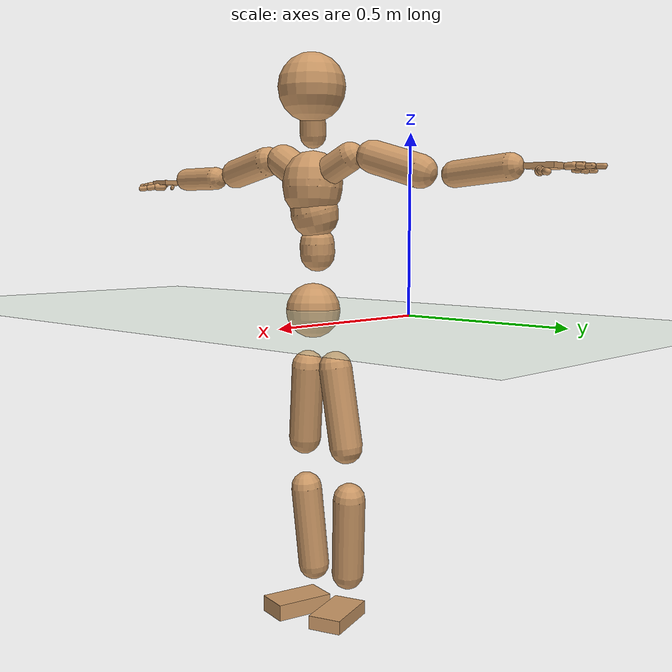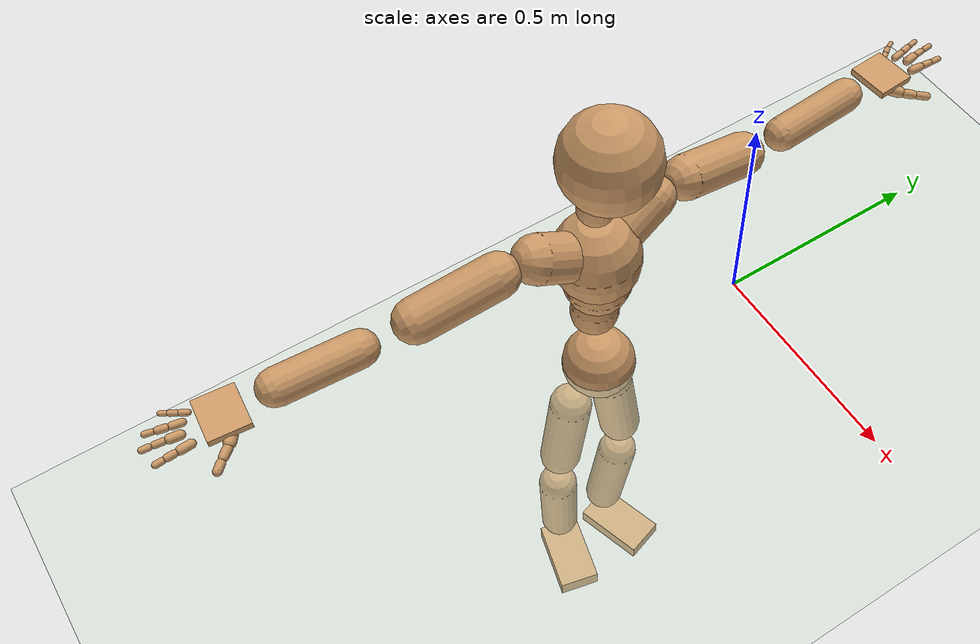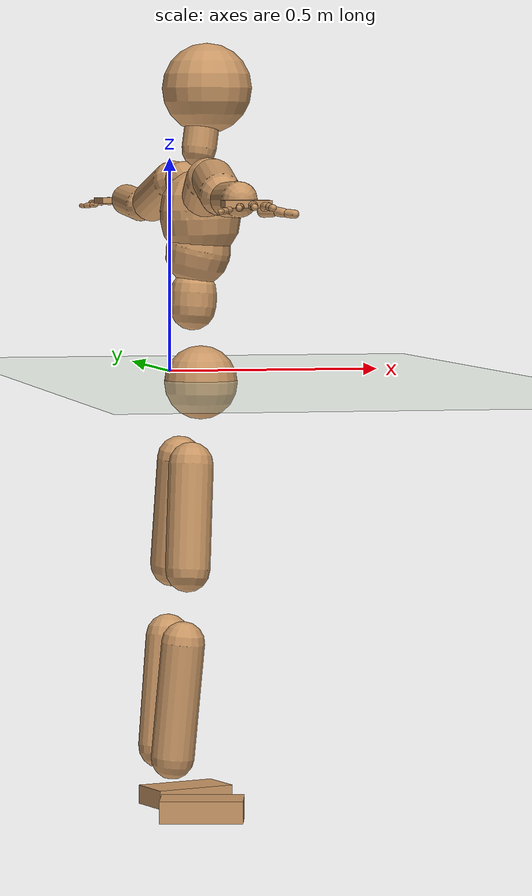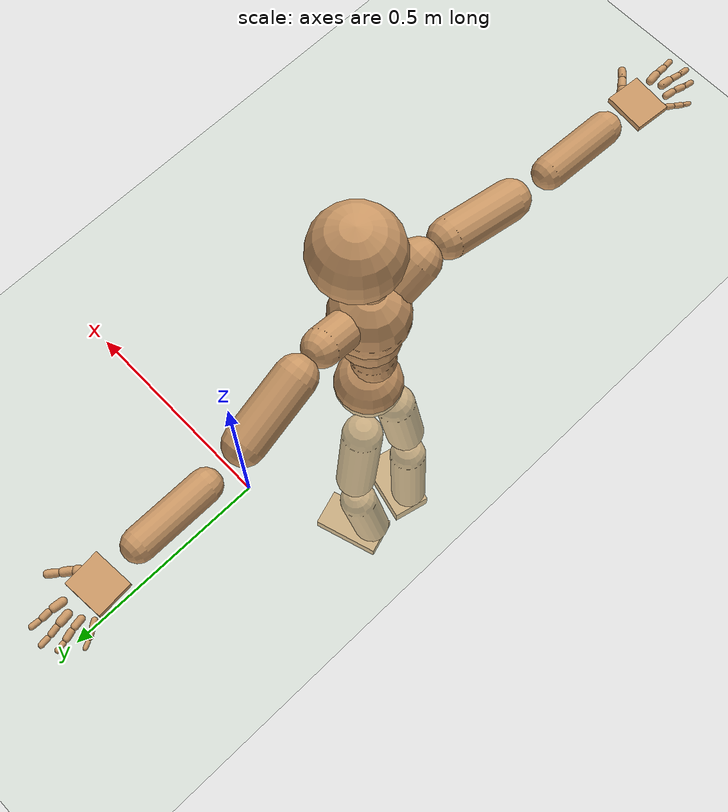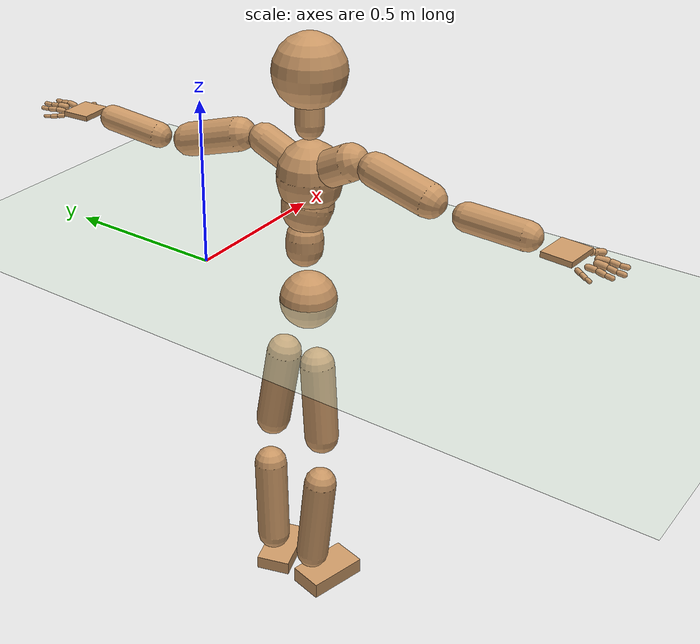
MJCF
<mujoco model="humanoid">
  <compiler coordinate="local" angle="radian"/>
  <default>
    <joint damping="0.0" armature="0.01" stiffness="0.0" limited="true"/>
    <geom conaffinity="1" condim="3" contype="7" margin="0.001" rgba="0.8 0.6 .4 1"/>
  </default>
  <asset>
    <texture type="skybox" builtin="gradient" rgb1=".4 .5 .6" rgb2="0 0 0" width="100" height="100"/>
    <texture builtin="flat" height="1278" mark="cross" markrgb="1 1 1" name="texgeom" random="0.01" rgb1="0.8 0.6 0.4" rgb2="0.8 0.6 0.4" type="cube" width="127"/>
    <texture builtin="checker" height="100" name="texplane" rgb1="0 0 0" rgb2="0.8 0.8 0.8" type="2d" width="100"/>
    <material name="MatPlane" reflectance="0.5" shininess="1" specular="1" texrepeat="60 60" texture="texplane"/>
    <material name="geom" texture="texgeom" texuniform="true"/>
  </asset>
  <worldbody>
    <light cutoff="100" diffuse="1 1 1" dir="-0 0 -1.3" directional="true" exponent="1" pos="0 0 1.3" specular=".1 .1 .1"/>
    <geom conaffinity="1" condim="3" name="floor" pos="0 0 0" rgba="0.8 0.9 0.8 1" size="100 100 .2" type="plane" material="MatPlane"/>
    <body name="Pelvis" pos="0.0003 -0.3747 -0.0071">
      <freejoint name="Pelvis"/>
      <geom type="sphere" contype="1" conaffinity="1" density="500" size="0.0833" pos="0.0000 0.0000 0.0000" name="Pelvis"/>
      <body name="L_Hip" pos="-0.0344 0.0461 -0.0937">
        <joint name="L_Hip_x" type="hinge" pos="0 0 0" axis="1 0 0" stiffness="800" damping="80" armature="0.02" range="-180.0000 180.0000"/>
        <joint name="L_Hip_y" type="hinge" pos="0 0 0" axis="0 1 0" stiffness="800" damping="80" armature="0.02" range="-180.0000 180.0000"/>
        <joint name="L_Hip_z" type="hinge" pos="0 0 0" axis="0 0 1" stiffness="800" damping="80" armature="0.02" range="-180.0000 180.0000"/>
        <geom type="capsule" contype="1" conaffinity="1" density="500" fromto="-0.0032 0.0121 -0.0815 -0.0130 0.0482 -0.3260" size="0.0511" name="L_Hip"/>
        <body name="L_Knee" pos="-0.0162 0.0603 -0.4074">
          <joint name="L_Knee_x" type="hinge" pos="0 0 0" axis="1 0 0" stiffness="800" damping="80" armature="0.02" range="-180.0000 180.0000"/>
          <joint name="L_Knee_y" type="hinge" pos="0 0 0" axis="0 1 0" stiffness="800" damping="80" armature="0.02" range="-180.0000 180.0000"/>
          <joint name="L_Knee_z" type="hinge" pos="0 0 0" axis="0 0 1" stiffness="800" damping="80" armature="0.02" range="-180.0000 180.0000"/>
          <geom type="capsule" contype="1" conaffinity="1" density="500" fromto="-0.0076 -0.0087 -0.0835 -0.0304 -0.0350 -0.3340" size="0.0499" name="L_Knee"/>
          <body name="L_Ankle" pos="-0.038 -0.0437 -0.4175">
            <joint name="L_Ankle_x" type="hinge" pos="0 0 0" axis="1 0 0" stiffness="800" damping="80" armature="0.02" range="-180.0000 180.0000"/>
            <joint name="L_Ankle_y" type="hinge" pos="0 0 0" axis="0 1 0" stiffness="800" damping="80" armature="0.02" range="-180.0000 180.0000"/>
            <joint name="L_Ankle_z" type="hinge" pos="0 0 0" axis="0 0 1" stiffness="800" damping="80" armature="0.02" range="-180.0000 180.0000"/>
            <geom type="box" contype="1" conaffinity="1" density="500" pos="0.0691 0.0218 -0.0312" size="0.0936 0.0518 0.0212" quat="0.9884 0.0000 0.0000 0.1521" name="L_Ankle"/>
            <body name="L_Toe" pos="0.1381 0.0435 -0.0624">
              <joint name="L_Toe_x" type="hinge" pos="0 0 0" axis="1 0 0" stiffness="500" damping="50" armature="0.02" range="-180.0000 180.0000"/>
              <joint name="L_Toe_y" type="hinge" pos="0 0 0" axis="0 1 0" stiffness="500" damping="50" armature="0.02" range="-180.0000 180.0000"/>
              <joint name="L_Toe_z" type="hinge" pos="0 0 0" axis="0 0 1" stiffness="500" damping="50" armature="0.02" range="-180.0000 180.0000"/>
              <geom type="box" contype="1" conaffinity="1" density="500" pos="0.0000 0.0000 0.0309" size="0.001 0.0025 0.001" quat="0.9877 0.0000 0.0000 0.1565" name="L_Toe"/>
            </body>
          </body>
        </body>
      </body>
      <body name="R_Hip" pos="-0.0293 -0.0473 -0.103">
        <joint name="R_Hip_x" type="hinge" pos="0 0 0" axis="1 0 0" stiffness="800" damping="80" armature="0.02" range="-180.0000 180.0000"/>
        <joint name="R_Hip_y" type="hinge" pos="0 0 0" axis="0 1 0" stiffness="800" damping="80" armature="0.02" range="-180.0000 180.0000"/>
        <joint name="R_Hip_z" type="hinge" pos="0 0 0" axis="0 0 1" stiffness="800" damping="80" armature="0.02" range="-180.0000 180.0000"/>
        <geom type="capsule" contype="1" conaffinity="1" density="500" fromto="-0.0044 -0.0091 -0.0782 -0.0175 -0.0365 -0.3127" size="0.0505" name="R_Hip"/>
        <body name="R_Knee" pos="-0.0219 -0.0456 -0.3908">
          <joint name="R_Knee_x" type="hinge" pos="0 0 0" axis="1 0 0" stiffness="800" damping="80" armature="0.02" range="-180.0000 180.0000"/>
          <joint name="R_Knee_y" type="hinge" pos="0 0 0" axis="0 1 0" stiffness="800" damping="80" armature="0.02" range="-180.0000 180.0000"/>
          <joint name="R_Knee_z" type="hinge" pos="0 0 0" axis="0 0 1" stiffness="800" damping="80" armature="0.02" range="-180.0000 180.0000"/>
          <geom type="capsule" contype="1" conaffinity="1" density="500" fromto="-0.0073 0.0038 -0.0864 -0.0292 0.0153 -0.3456" size="0.0491" name="R_Knee"/>
          <body name="R_Ankle" pos="-0.0365 0.0191 -0.4319">
            <joint name="R_Ankle_x" type="hinge" pos="0 0 0" axis="1 0 0" stiffness="800" damping="80" armature="0.02" range="-180.0000 180.0000"/>
            <joint name="R_Ankle_y" type="hinge" pos="0 0 0" axis="0 1 0" stiffness="800" damping="80" armature="0.02" range="-180.0000 180.0000"/>
            <joint name="R_Ankle_z" type="hinge" pos="0 0 0" axis="0 0 1" stiffness="800" damping="80" armature="0.02" range="-180.0000 180.0000"/>
            <geom type="box" contype="1" conaffinity="1" density="500" pos="0.0721 -0.0175 -0.0309" size="0.0936 0.0526 0.0253" quat="0.9929 0.0000 0.0000 -0.1190" name="R_Ankle"/>
            <body name="R_Toe" pos="0.1441 -0.0351 -0.0618">
              <joint name="R_Toe_x" type="hinge" pos="0 0 0" axis="1 0 0" stiffness="500" damping="50" armature="0.02" range="-180.0000 180.0000"/>
              <joint name="R_Toe_y" type="hinge" pos="0 0 0" axis="0 1 0" stiffness="500" damping="50" armature="0.02" range="-180.0000 180.0000"/>
              <joint name="R_Toe_z" type="hinge" pos="0 0 0" axis="0 0 1" stiffness="500" damping="50" armature="0.02" range="-180.0000 180.0000"/>
              <geom type="box" contype="1" conaffinity="1" density="500" pos="0.0000 0.0000 0.0264" size="0.001 0.0025 0.001" quat="0.9938 0.0000 0.0000 -0.1110" name="R_Toe"/>
            </body>
          </body>
        </body>
      </body>
      <body name="Torso" pos="-0.0223 -0.0007 0.107">
        <joint name="Torso_x" type="hinge" pos="0 0 0" axis="1 0 0" stiffness="1000" damping="100" armature="0.02" range="-180.0000 180.0000"/>
        <joint name="Torso_y" type="hinge" pos="0 0 0" axis="0 1 0" stiffness="1000" damping="100" armature="0.02" range="-180.0000 180.0000"/>
        <joint name="Torso_z" type="hinge" pos="0 0 0" axis="0 0 1" stiffness="1000" damping="100" armature="0.02" range="-180.0000 180.0000"/>
        <geom type="capsule" contype="1" conaffinity="1" density="500" fromto="0.0062 0.0027 0.0953 0.0041 0.0018 0.0636" size="0.0528" name="Torso"/>
        <body name="Spine" pos="0.0103 0.0044 0.1589">
          <joint name="Spine_x" type="hinge" pos="0 0 0" axis="1 0 0" stiffness="1000" damping="100" armature="0.02" range="-180.0000 180.0000"/>
          <joint name="Spine_y" type="hinge" pos="0 0 0" axis="0 1 0" stiffness="1000" damping="100" armature="0.02" range="-180.0000 180.0000"/>
          <joint name="Spine_z" type="hinge" pos="0 0 0" axis="0 0 1" stiffness="1000" damping="100" armature="0.02" range="-180.0000 180.0000"/>
          <geom type="capsule" contype="1" conaffinity="1" density="500" fromto="0.0077 -0.0038 0.0359 0.0051 -0.0025 0.0239" size="0.073" name="Spine"/>
          <body name="Chest" pos="0.0128 -0.0063 0.0598">
            <joint name="Chest_x" type="hinge" pos="0 0 0" axis="1 0 0" stiffness="1000" damping="100" armature="0.02" range="-180.0000 180.0000"/>
            <joint name="Chest_y" type="hinge" pos="0 0 0" axis="0 1 0" stiffness="1000" damping="100" armature="0.02" range="-180.0000 180.0000"/>
            <joint name="Chest_z" type="hinge" pos="0 0 0" axis="0 0 1" stiffness="1000" damping="100" armature="0.02" range="-180.0000 180.0000"/>
            <geom type="capsule" contype="1" conaffinity="1" density="500" fromto="-0.0026 -0.0004 0.0637 -0.0018 -0.0003 0.0424" size="0.091" name="Chest"/>
            <body name="Neck" pos="-0.0107 -0.0051 0.1649">
              <joint name="Neck_x" type="hinge" pos="0 0 0" axis="1 0 0" stiffness="500" damping="50" armature="0.02" range="-180.0000 180.0000"/>
              <joint name="Neck_y" type="hinge" pos="0 0 0" axis="0 1 0" stiffness="500" damping="50" armature="0.02" range="-180.0000 180.0000"/>
              <joint name="Neck_z" type="hinge" pos="0 0 0" axis="0 0 1" stiffness="500" damping="50" armature="0.02" range="-180.0000 180.0000"/>
              <geom type="capsule" contype="1" conaffinity="1" density="500" fromto="0.0053 0.0040 0.0342 0.0213 0.0161 0.1366" size="0.0393" name="Neck"/>
              <body name="Head" pos="0.0267 0.0201 0.1708">
                <joint name="Head_x" type="hinge" pos="0 0 0" axis="1 0 0" stiffness="500" damping="50" armature="0.02" range="-180.0000 180.0000"/>
                <joint name="Head_y" type="hinge" pos="0 0 0" axis="0 1 0" stiffness="500" damping="50" armature="0.02" range="-180.0000 180.0000"/>
                <joint name="Head_z" type="hinge" pos="0 0 0" axis="0 0 1" stiffness="500" damping="50" armature="0.02" range="-180.0000 180.0000"/>
                <geom type="sphere" contype="1" conaffinity="1" density="500" size="0.1016" pos="0.0000 0.0000 0.0000" name="Head"/>
              </body>
            </body>
            <body name="L_Thorax" pos="0.0009 0.0399 0.0766">
              <joint name="L_Thorax_x" type="hinge" pos="0 0 0" axis="1 0 0" stiffness="500" damping="50" armature="0.02" range="-180.0000 180.0000"/>
              <joint name="L_Thorax_y" type="hinge" pos="0 0 0" axis="0 1 0" stiffness="500" damping="50" armature="0.02" range="-180.0000 180.0000"/>
              <joint name="L_Thorax_z" type="hinge" pos="0 0 0" axis="0 0 1" stiffness="500" damping="50" armature="0.02" range="-180.0000 180.0000"/>
              <geom type="capsule" contype="1" conaffinity="1" density="500" fromto="-0.0033 0.0257 0.0132 -0.0133 0.1027 0.0529" size="0.0435" name="L_Thorax"/>
              <body name="L_Shoulder" pos="-0.0166 0.1284 0.0662">
                <joint name="L_Shoulder_x" type="hinge" pos="0 0 0" axis="1 0 0" stiffness="500" damping="50" armature="0.02" range="-180.0000 180.0000"/>
                <joint name="L_Shoulder_y" type="hinge" pos="0 0 0" axis="0 1 0" stiffness="500" damping="50" armature="0.02" range="-180.0000 180.0000"/>
                <joint name="L_Shoulder_z" type="hinge" pos="0 0 0" axis="0 0 1" stiffness="500" damping="50" armature="0.02" range="-180.0000 180.0000"/>
                <geom type="capsule" contype="1" conaffinity="1" density="500" fromto="-0.0062 0.0534 -0.0156 -0.0249 0.2137 -0.0626" size="0.0475" name="L_Shoulder"/>
                <body name="L_Elbow" pos="-0.0311 0.2671 -0.0782">
                  <joint name="L_Elbow_x" type="hinge" pos="0 0 0" axis="1 0 0" stiffness="500" damping="50" armature="0.02" range="-720.0000 720.0000"/>
                  <joint name="L_Elbow_y" type="hinge" pos="0 0 0" axis="0 1 0" stiffness="500" damping="50" armature="0.02" range="-720.0000 720.0000"/>
                  <joint name="L_Elbow_z" type="hinge" pos="0 0 0" axis="0 0 1" stiffness="500" damping="50" armature="0.02" range="-720.0000 720.0000"/>
                  <geom type="capsule" contype="1" conaffinity="1" density="500" fromto="-0.0014 0.0576 0.0045 -0.0055 0.2306 0.0179" size="0.0367" name="L_Elbow"/>
                  <body name="L_Wrist" pos="-0.0069 0.2882 0.0224">
                    <joint name="L_Wrist_x" type="hinge" pos="0 0 0" axis="1 0 0" stiffness="300" damping="30" armature="0.02" range="-180.0000 180.0000"/>
                    <joint name="L_Wrist_y" type="hinge" pos="0 0 0" axis="0 1 0" stiffness="300" damping="30" armature="0.02" range="-180.0000 180.0000"/>
                    <joint name="L_Wrist_z" type="hinge" pos="0 0 0" axis="0 0 1" stiffness="300" damping="30" armature="0.02" range="-180.0000 180.0000"/>
                    <geom type="box" contype="1" conaffinity="1" density="500" pos="-0.0036 0.0476 -0.0071" size="0.0419 0.0472 0.0074" quat="0.7334 0.0000 0.0000 -0.6798" name="L_Wrist"/>
                    <body name="L_Index1" pos="0.0188 0.1107 -0.0116">
                      <joint name="L_Index1_x" type="hinge" pos="0 0 0" axis="1 0 0" stiffness="100" damping="10" armature="0.02" range="-180.0000 180.0000"/>
                      <joint name="L_Index1_y" type="hinge" pos="0 0 0" axis="0 1 0" stiffness="100" damping="10" armature="0.02" range="-180.0000 180.0000"/>
                      <joint name="L_Index1_z" type="hinge" pos="0 0 0" axis="0 0 1" stiffness="100" damping="10" armature="0.02" range="-180.0000 180.0000"/>
                      <geom type="capsule" contype="1" conaffinity="1" density="500" fromto="0.0006 0.0068 0.0003 0.0026 0.0273 0.0012" size="0.0092" name="L_Index1"/>
                      <body name="L_Index2" pos="0.0032 0.0342 0.0015">
                        <joint name="L_Index2_x" type="hinge" pos="0 0 0" axis="1 0 0" stiffness="100" damping="10" armature="0.02" range="-180.0000 180.0000"/>
                        <joint name="L_Index2_y" type="hinge" pos="0 0 0" axis="0 1 0" stiffness="100" damping="10" armature="0.02" range="-180.0000 180.0000"/>
                        <joint name="L_Index2_z" type="hinge" pos="0 0 0" axis="0 0 1" stiffness="100" damping="10" armature="0.02" range="-180.0000 180.0000"/>
                        <geom type="capsule" contype="1" conaffinity="1" density="500" fromto="-0.0000 0.0048 -0.0005 -0.0002 0.0193 -0.0020" size="0.0076" name="L_Index2"/>
                        <body name="L_Index3" pos="-0.0002 0.0242 -0.0025">
                          <joint name="L_Index3_x" type="hinge" pos="0 0 0" axis="1 0 0" stiffness="100" damping="10" armature="0.02" range="-180.0000 180.0000"/>
                          <joint name="L_Index3_y" type="hinge" pos="0 0 0" axis="0 1 0" stiffness="100" damping="10" armature="0.02" range="-180.0000 180.0000"/>
                          <joint name="L_Index3_z" type="hinge" pos="0 0 0" axis="0 0 1" stiffness="100" damping="10" armature="0.02" range="-180.0000 180.0000"/>
                          <geom type="capsule" contype="1" conaffinity="1" density="500" fromto="0.0004 0.0052 -0.0001 0.0014 0.0209 -0.0004" size="0.0065" name="L_Index3"/>
                        </body>
                      </body>
                    </body>
                    <body name="L_Middle1" pos="-0.0056 0.1194 -0.0091">
                      <joint name="L_Middle1_x" type="hinge" pos="0 0 0" axis="1 0 0" stiffness="100" damping="10" armature="0.02" range="-180.0000 180.0000"/>
                      <joint name="L_Middle1_y" type="hinge" pos="0 0 0" axis="0 1 0" stiffness="100" damping="10" armature="0.02" range="-180.0000 180.0000"/>
                      <joint name="L_Middle1_z" type="hinge" pos="0 0 0" axis="0 0 1" stiffness="100" damping="10" armature="0.02" range="-180.0000 180.0000"/>
                      <geom type="capsule" contype="1" conaffinity="1" density="500" fromto="-0.0009 0.0065 0.0000 -0.0037 0.0261 0.0001" size="0.0094" name="L_Middle1"/>
                      <body name="L_Middle2" pos="-0.0047 0.0326 0.0001">
                        <joint name="L_Middle2_x" type="hinge" pos="0 0 0" axis="1 0 0" stiffness="100" damping="10" armature="0.02" range="-180.0000 180.0000"/>
                        <joint name="L_Middle2_y" type="hinge" pos="0 0 0" axis="0 1 0" stiffness="100" damping="10" armature="0.02" range="-180.0000 180.0000"/>
                        <joint name="L_Middle2_z" type="hinge" pos="0 0 0" axis="0 0 1" stiffness="100" damping="10" armature="0.02" range="-180.0000 180.0000"/>
                        <geom type="capsule" contype="1" conaffinity="1" density="500" fromto="-0.0009 0.0050 -0.0005 -0.0036 0.0201 -0.0019" size="0.0071" name="L_Middle2"/>
                        <body name="L_Middle3" pos="-0.0045 0.0251 -0.0024">
                          <joint name="L_Middle3_x" type="hinge" pos="0 0 0" axis="1 0 0" stiffness="100" damping="10" armature="0.02" range="-180.0000 180.0000"/>
                          <joint name="L_Middle3_y" type="hinge" pos="0 0 0" axis="0 1 0" stiffness="100" damping="10" armature="0.02" range="-180.0000 180.0000"/>
                          <joint name="L_Middle3_z" type="hinge" pos="0 0 0" axis="0 0 1" stiffness="100" damping="10" armature="0.02" range="-180.0000 180.0000"/>
                          <geom type="capsule" contype="1" conaffinity="1" density="500" fromto="-0.0005 0.0054 -0.0001 -0.0020 0.0217 -0.0003" size="0.0064" name="L_Middle3"/>
                        </body>
                      </body>
                    </body>
                    <body name="L_Pinky1" pos="-0.0462 0.0935 -0.0171">
                      <joint name="L_Pinky1_x" type="hinge" pos="0 0 0" axis="1 0 0" stiffness="100" damping="10" armature="0.02" range="-180.0000 180.0000"/>
                      <joint name="L_Pinky1_y" type="hinge" pos="0 0 0" axis="0 1 0" stiffness="100" damping="10" armature="0.02" range="-180.0000 180.0000"/>
                      <joint name="L_Pinky1_z" type="hinge" pos="0 0 0" axis="0 0 1" stiffness="100" damping="10" armature="0.02" range="-180.0000 180.0000"/>
                      <geom type="capsule" contype="1" conaffinity="1" density="500" fromto="-0.0023 0.0035 -0.0003 -0.0092 0.0139 -0.0014" size="0.0066" name="L_Pinky1"/>
                      <body name="L_Pinky2" pos="-0.0115 0.0174 -0.0017">
                        <joint name="L_Pinky2_x" type="hinge" pos="0 0 0" axis="1 0 0" stiffness="100" damping="10" armature="0.02" range="-180.0000 180.0000"/>
                        <joint name="L_Pinky2_y" type="hinge" pos="0 0 0" axis="0 1 0" stiffness="100" damping="10" armature="0.02" range="-180.0000 180.0000"/>
                        <joint name="L_Pinky2_z" type="hinge" pos="0 0 0" axis="0 0 1" stiffness="100" damping="10" armature="0.02" range="-180.0000 180.0000"/>
                        <geom type="capsule" contype="1" conaffinity="1" density="500" fromto="-0.0022 0.0034 -0.0003 -0.0090 0.0136 -0.0014" size="0.0064" name="L_Pinky2"/>
                        <body name="L_Pinky3" pos="-0.0112 0.017 -0.0017">
                          <joint name="L_Pinky3_x" type="hinge" pos="0 0 0" axis="1 0 0" stiffness="100" damping="10" armature="0.02" range="-180.0000 180.0000"/>
                          <joint name="L_Pinky3_y" type="hinge" pos="0 0 0" axis="0 1 0" stiffness="100" damping="10" armature="0.02" range="-180.0000 180.0000"/>
                          <joint name="L_Pinky3_z" type="hinge" pos="0 0 0" axis="0 0 1" stiffness="100" damping="10" armature="0.02" range="-180.0000 180.0000"/>
                          <geom type="capsule" contype="1" conaffinity="1" density="500" fromto="-0.0018 0.0038 0.0001 -0.0074 0.0152 0.0002" size="0.005" name="L_Pinky3"/>
                        </body>
                      </body>
                    </body>
                    <body name="L_Ring1" pos="-0.0295 0.1073 -0.0118">
                      <joint name="L_Ring1_x" type="hinge" pos="0 0 0" axis="1 0 0" stiffness="100" damping="10" armature="0.02" range="-180.0000 180.0000"/>
                      <joint name="L_Ring1_y" type="hinge" pos="0 0 0" axis="0 1 0" stiffness="100" damping="10" armature="0.02" range="-180.0000 180.0000"/>
                      <joint name="L_Ring1_z" type="hinge" pos="0 0 0" axis="0 0 1" stiffness="100" damping="10" armature="0.02" range="-180.0000 180.0000"/>
                      <geom type="capsule" contype="1" conaffinity="1" density="500" fromto="-0.0010 0.0060 0.0001 -0.0041 0.0241 0.0005" size="0.0079" name="L_Ring1"/>
                      <body name="L_Ring2" pos="-0.0051 0.0301 0.0007">
                        <joint name="L_Ring2_x" type="hinge" pos="0 0 0" axis="1 0 0" stiffness="100" damping="10" armature="0.02" range="-180.0000 180.0000"/>
                        <joint name="L_Ring2_y" type="hinge" pos="0 0 0" axis="0 1 0" stiffness="100" damping="10" armature="0.02" range="-180.0000 180.0000"/>
                        <joint name="L_Ring2_z" type="hinge" pos="0 0 0" axis="0 0 1" stiffness="100" damping="10" armature="0.02" range="-180.0000 180.0000"/>
                        <geom type="capsule" contype="1" conaffinity="1" density="500" fromto="-0.0014 0.0049 -0.0004 -0.0056 0.0195 -0.0016" size="0.0076" name="L_Ring2"/>
                        <body name="L_Ring3" pos="-0.007 0.0243 -0.0019">
                          <joint name="L_Ring3_x" type="hinge" pos="0 0 0" axis="1 0 0" stiffness="100" damping="10" armature="0.02" range="-180.0000 180.0000"/>
                          <joint name="L_Ring3_y" type="hinge" pos="0 0 0" axis="0 1 0" stiffness="100" damping="10" armature="0.02" range="-180.0000 180.0000"/>
                          <joint name="L_Ring3_z" type="hinge" pos="0 0 0" axis="0 0 1" stiffness="100" damping="10" armature="0.02" range="-180.0000 180.0000"/>
                          <geom type="capsule" contype="1" conaffinity="1" density="500" fromto="-0.0010 0.0053 0.0000 -0.0040 0.0211 0.0000" size="0.006" name="L_Ring3"/>
                        </body>
                      </body>
                    </body>
                    <body name="L_Thumb1" pos="0.0263 0.0448 -0.0214">
                      <joint name="L_Thumb1_x" type="hinge" pos="0 0 0" axis="1 0 0" stiffness="100" damping="10" armature="0.02" range="-180.0000 180.0000"/>
                      <joint name="L_Thumb1_y" type="hinge" pos="0 0 0" axis="0 1 0" stiffness="100" damping="10" armature="0.02" range="-180.0000 180.0000"/>
                      <joint name="L_Thumb1_z" type="hinge" pos="0 0 0" axis="0 0 1" stiffness="100" damping="10" armature="0.02" range="-180.0000 180.0000"/>
                      <geom type="capsule" contype="1" conaffinity="1" density="500" fromto="0.0055 0.0036 0.0002 0.0219 0.0145 0.0008" size="0.0124" name="L_Thumb1"/>
                      <body name="L_Thumb2" pos="0.0274 0.0181 0.001">
                        <joint name="L_Thumb2_x" type="hinge" pos="0 0 0" axis="1 0 0" stiffness="100" damping="10" armature="0.02" range="-180.0000 180.0000"/>
                        <joint name="L_Thumb2_y" type="hinge" pos="0 0 0" axis="0 1 0" stiffness="100" damping="10" armature="0.02" range="-180.0000 180.0000"/>
                        <joint name="L_Thumb2_z" type="hinge" pos="0 0 0" axis="0 0 1" stiffness="100" damping="10" armature="0.02" range="-180.0000 180.0000"/>
                        <geom type="capsule" contype="1" conaffinity="1" density="500" fromto="0.0035 0.0045 -0.0008 0.0138 0.0179 -0.0034" size="0.0096" name="L_Thumb2"/>
                        <body name="L_Thumb3" pos="0.0173 0.0224 -0.0042">
                          <joint name="L_Thumb3_x" type="hinge" pos="0 0 0" axis="1 0 0" stiffness="100" damping="10" armature="0.02" range="-180.0000 180.0000"/>
                          <joint name="L_Thumb3_y" type="hinge" pos="0 0 0" axis="0 1 0" stiffness="100" damping="10" armature="0.02" range="-180.0000 180.0000"/>
                          <joint name="L_Thumb3_z" type="hinge" pos="0 0 0" axis="0 0 1" stiffness="100" damping="10" armature="0.02" range="-180.0000 180.0000"/>
                          <geom type="capsule" contype="1" conaffinity="1" density="500" fromto="0.0039 0.0049 -0.0004 0.0154 0.0195 -0.0018" size="0.0087" name="L_Thumb3"/>
                        </body>
                      </body>
                    </body>
                  </body>
                </body>
              </body>
            </body>
            <body name="R_Thorax" pos="-0.0034 -0.0367 0.0768">
              <joint name="R_Thorax_x" type="hinge" pos="0 0 0" axis="1 0 0" stiffness="500" damping="50" armature="0.02" range="-180.0000 180.0000"/>
              <joint name="R_Thorax_y" type="hinge" pos="0 0 0" axis="0 1 0" stiffness="500" damping="50" armature="0.02" range="-180.0000 180.0000"/>
              <joint name="R_Thorax_z" type="hinge" pos="0 0 0" axis="0 0 1" stiffness="500" damping="50" armature="0.02" range="-180.0000 180.0000"/>
              <geom type="capsule" contype="1" conaffinity="1" density="500" fromto="-0.0015 -0.0241 0.0131 -0.0059 -0.0964 0.0522" size="0.0511" name="R_Thorax"/>
              <body name="R_Shoulder" pos="-0.0074 -0.1206 0.0653">
                <joint name="R_Shoulder_x" type="hinge" pos="0 0 0" axis="1 0 0" stiffness="500" damping="50" armature="0.02" range="-180.0000 180.0000"/>
                <joint name="R_Shoulder_y" type="hinge" pos="0 0 0" axis="0 1 0" stiffness="500" damping="50" armature="0.02" range="-180.0000 180.0000"/>
                <joint name="R_Shoulder_z" type="hinge" pos="0 0 0" axis="0 0 1" stiffness="500" damping="50" armature="0.02" range="-180.0000 180.0000"/>
                <geom type="capsule" contype="1" conaffinity="1" density="500" fromto="-0.0055 -0.0568 -0.0108 -0.0218 -0.2274 -0.0431" size="0.0463" name="R_Shoulder"/>
                <body name="R_Elbow" pos="-0.0273 -0.2842 -0.0538">
                  <joint name="R_Elbow_x" type="hinge" pos="0 0 0" axis="1 0 0" stiffness="500" damping="50" armature="0.02" range="-720.0000 720.0000"/>
                  <joint name="R_Elbow_y" type="hinge" pos="0 0 0" axis="0 1 0" stiffness="500" damping="50" armature="0.02" range="-720.0000 720.0000"/>
                  <joint name="R_Elbow_z" type="hinge" pos="0 0 0" axis="0 0 1" stiffness="500" damping="50" armature="0.02" range="-720.0000 720.0000"/>
                  <geom type="capsule" contype="1" conaffinity="1" density="500" fromto="-0.0030 -0.0556 0.0004 -0.0118 -0.2224 0.0014" size="0.0376" name="R_Elbow"/>
                  <body name="R_Wrist" pos="-0.0148 -0.278 0.0018">
                    <joint name="R_Wrist_x" type="hinge" pos="0 0 0" axis="1 0 0" stiffness="300" damping="30" armature="0.02" range="-180.0000 180.0000"/>
                    <joint name="R_Wrist_y" type="hinge" pos="0 0 0" axis="0 1 0" stiffness="300" damping="30" armature="0.02" range="-180.0000 180.0000"/>
                    <joint name="R_Wrist_z" type="hinge" pos="0 0 0" axis="0 0 1" stiffness="300" damping="30" armature="0.02" range="-180.0000 180.0000"/>
                    <geom type="box" contype="1" conaffinity="1" density="500" pos="-0.0040 -0.0474 -0.0087" size="0.0419 0.0485 0.0075" quat="0.7364 0.0000 0.0000 0.6765" name="R_Wrist"/>
                    <body name="R_Index1" pos="0.018 -0.1103 -0.0147">
                      <joint name="R_Index1_x" type="hinge" pos="0 0 0" axis="1 0 0" stiffness="100" damping="10" armature="0.02" range="-180.0000 180.0000"/>
                      <joint name="R_Index1_y" type="hinge" pos="0 0 0" axis="0 1 0" stiffness="100" damping="10" armature="0.02" range="-180.0000 180.0000"/>
                      <joint name="R_Index1_z" type="hinge" pos="0 0 0" axis="0 0 1" stiffness="100" damping="10" armature="0.02" range="-180.0000 180.0000"/>
                      <geom type="capsule" contype="1" conaffinity="1" density="500" fromto="0.0006 -0.0068 0.0003 0.0026 -0.0273 0.0012" size="0.0092" name="R_Index1"/>
                      <body name="R_Index2" pos="0.0032 -0.0342 0.0015">
                        <joint name="R_Index2_x" type="hinge" pos="0 0 0" axis="1 0 0" stiffness="100" damping="10" armature="0.02" range="-180.0000 180.0000"/>
                        <joint name="R_Index2_y" type="hinge" pos="0 0 0" axis="0 1 0" stiffness="100" damping="10" armature="0.02" range="-180.0000 180.0000"/>
                        <joint name="R_Index2_z" type="hinge" pos="0 0 0" axis="0 0 1" stiffness="100" damping="10" armature="0.02" range="-180.0000 180.0000"/>
                        <geom type="capsule" contype="1" conaffinity="1" density="500" fromto="-0.0000 -0.0048 -0.0005 -0.0002 -0.0193 -0.0020" size="0.0076" name="R_Index2"/>
                        <body name="R_Index3" pos="-0.0002 -0.0242 -0.0025">
                          <joint name="R_Index3_x" type="hinge" pos="0 0 0" axis="1 0 0" stiffness="100" damping="10" armature="0.02" range="-180.0000 180.0000"/>
                          <joint name="R_Index3_y" type="hinge" pos="0 0 0" axis="0 1 0" stiffness="100" damping="10" armature="0.02" range="-180.0000 180.0000"/>
                          <joint name="R_Index3_z" type="hinge" pos="0 0 0" axis="0 0 1" stiffness="100" damping="10" armature="0.02" range="-180.0000 180.0000"/>
                          <geom type="capsule" contype="1" conaffinity="1" density="500" fromto="0.0004 -0.0044 -0.0001 0.0014 -0.0177 -0.0004" size="0.0068" name="R_Index3"/>
                        </body>
                      </body>
                    </body>
                    <body name="R_Middle1" pos="-0.0064 -0.1191 -0.0122">
                      <joint name="R_Middle1_x" type="hinge" pos="0 0 0" axis="1 0 0" stiffness="100" damping="10" armature="0.02" range="-180.0000 180.0000"/>
                      <joint name="R_Middle1_y" type="hinge" pos="0 0 0" axis="0 1 0" stiffness="100" damping="10" armature="0.02" range="-180.0000 180.0000"/>
                      <joint name="R_Middle1_z" type="hinge" pos="0 0 0" axis="0 0 1" stiffness="100" damping="10" armature="0.02" range="-180.0000 180.0000"/>
                      <geom type="capsule" contype="1" conaffinity="1" density="500" fromto="-0.0009 -0.0065 0.0000 -0.0037 -0.0261 0.0001" size="0.0094" name="R_Middle1"/>
                      <body name="R_Middle2" pos="-0.0047 -0.0326 0.0001">
                        <joint name="R_Middle2_x" type="hinge" pos="0 0 0" axis="1 0 0" stiffness="100" damping="10" armature="0.02" range="-180.0000 180.0000"/>
                        <joint name="R_Middle2_y" type="hinge" pos="0 0 0" axis="0 1 0" stiffness="100" damping="10" armature="0.02" range="-180.0000 180.0000"/>
                        <joint name="R_Middle2_z" type="hinge" pos="0 0 0" axis="0 0 1" stiffness="100" damping="10" armature="0.02" range="-180.0000 180.0000"/>
                        <geom type="capsule" contype="1" conaffinity="1" density="500" fromto="-0.0009 -0.0050 -0.0005 -0.0036 -0.0201 -0.0019" size="0.0071" name="R_Middle2"/>
                        <body name="R_Middle3" pos="-0.0045 -0.0251 -0.0024">
                          <joint name="R_Middle3_x" type="hinge" pos="0 0 0" axis="1 0 0" stiffness="100" damping="10" armature="0.02" range="-180.0000 180.0000"/>
                          <joint name="R_Middle3_y" type="hinge" pos="0 0 0" axis="0 1 0" stiffness="100" damping="10" armature="0.02" range="-180.0000 180.0000"/>
                          <joint name="R_Middle3_z" type="hinge" pos="0 0 0" axis="0 0 1" stiffness="100" damping="10" armature="0.02" range="-180.0000 180.0000"/>
                          <geom type="capsule" contype="1" conaffinity="1" density="500" fromto="-0.0005 -0.0046 -0.0001 -0.0020 -0.0185 -0.0003" size="0.0067" name="R_Middle3"/>
                        </body>
                      </body>
                    </body>
                    <body name="R_Pinky1" pos="-0.047 -0.0931 -0.0202">
                      <joint name="R_Pinky1_x" type="hinge" pos="0 0 0" axis="1 0 0" stiffness="100" damping="10" armature="0.02" range="-180.0000 180.0000"/>
                      <joint name="R_Pinky1_y" type="hinge" pos="0 0 0" axis="0 1 0" stiffness="100" damping="10" armature="0.02" range="-180.0000 180.0000"/>
                      <joint name="R_Pinky1_z" type="hinge" pos="0 0 0" axis="0 0 1" stiffness="100" damping="10" armature="0.02" range="-180.0000 180.0000"/>
                      <geom type="capsule" contype="1" conaffinity="1" density="500" fromto="-0.0023 -0.0035 -0.0003 -0.0092 -0.0139 -0.0014" size="0.0066" name="R_Pinky1"/>
                      <body name="R_Pinky2" pos="-0.0115 -0.0174 -0.0017">
                        <joint name="R_Pinky2_x" type="hinge" pos="0 0 0" axis="1 0 0" stiffness="100" damping="10" armature="0.02" range="-180.0000 180.0000"/>
                        <joint name="R_Pinky2_y" type="hinge" pos="0 0 0" axis="0 1 0" stiffness="100" damping="10" armature="0.02" range="-180.0000 180.0000"/>
                        <joint name="R_Pinky2_z" type="hinge" pos="0 0 0" axis="0 0 1" stiffness="100" damping="10" armature="0.02" range="-180.0000 180.0000"/>
                        <geom type="capsule" contype="1" conaffinity="1" density="500" fromto="-0.0022 -0.0034 -0.0003 -0.0090 -0.0136 -0.0014" size="0.0064" name="R_Pinky2"/>
                        <body name="R_Pinky3" pos="-0.0112 -0.0169 -0.0017">
                          <joint name="R_Pinky3_x" type="hinge" pos="0 0 0" axis="1 0 0" stiffness="100" damping="10" armature="0.02" range="-180.0000 180.0000"/>
                          <joint name="R_Pinky3_y" type="hinge" pos="0 0 0" axis="0 1 0" stiffness="100" damping="10" armature="0.02" range="-180.0000 180.0000"/>
                          <joint name="R_Pinky3_z" type="hinge" pos="0 0 0" axis="0 0 1" stiffness="100" damping="10" armature="0.02" range="-180.0000 180.0000"/>
                          <geom type="capsule" contype="1" conaffinity="1" density="500" fromto="-0.0018 -0.0030 0.0001 -0.0074 -0.0120 0.0002" size="0.0052" name="R_Pinky3"/>
                        </body>
                      </body>
                    </body>
                    <body name="R_Ring1" pos="-0.0303 -0.1069 -0.0149">
                      <joint name="R_Ring1_x" type="hinge" pos="0 0 0" axis="1 0 0" stiffness="100" damping="10" armature="0.02" range="-180.0000 180.0000"/>
                      <joint name="R_Ring1_y" type="hinge" pos="0 0 0" axis="0 1 0" stiffness="100" damping="10" armature="0.02" range="-180.0000 180.0000"/>
                      <joint name="R_Ring1_z" type="hinge" pos="0 0 0" axis="0 0 1" stiffness="100" damping="10" armature="0.02" range="-180.0000 180.0000"/>
                      <geom type="capsule" contype="1" conaffinity="1" density="500" fromto="-0.0010 -0.0060 0.0001 -0.0041 -0.0241 0.0005" size="0.0079" name="R_Ring1"/>
                      <body name="R_Ring2" pos="-0.0051 -0.0301 0.0007">
                        <joint name="R_Ring2_x" type="hinge" pos="0 0 0" axis="1 0 0" stiffness="100" damping="10" armature="0.02" range="-180.0000 180.0000"/>
                        <joint name="R_Ring2_y" type="hinge" pos="0 0 0" axis="0 1 0" stiffness="100" damping="10" armature="0.02" range="-180.0000 180.0000"/>
                        <joint name="R_Ring2_z" type="hinge" pos="0 0 0" axis="0 0 1" stiffness="100" damping="10" armature="0.02" range="-180.0000 180.0000"/>
                        <geom type="capsule" contype="1" conaffinity="1" density="500" fromto="-0.0014 -0.0049 -0.0004 -0.0056 -0.0195 -0.0016" size="0.0076" name="R_Ring2"/>
                        <body name="R_Ring3" pos="-0.007 -0.0243 -0.0019">
                          <joint name="R_Ring3_x" type="hinge" pos="0 0 0" axis="1 0 0" stiffness="100" damping="10" armature="0.02" range="-180.0000 180.0000"/>
                          <joint name="R_Ring3_y" type="hinge" pos="0 0 0" axis="0 1 0" stiffness="100" damping="10" armature="0.02" range="-180.0000 180.0000"/>
                          <joint name="R_Ring3_z" type="hinge" pos="0 0 0" axis="0 0 1" stiffness="100" damping="10" armature="0.02" range="-180.0000 180.0000"/>
                          <geom type="capsule" contype="1" conaffinity="1" density="500" fromto="-0.0010 -0.0045 0.0000 -0.0040 -0.0179 0.0000" size="0.0063" name="R_Ring3"/>
                        </body>
                      </body>
                    </body>
                    <body name="R_Thumb1" pos="0.0255 -0.0445 -0.0245">
                      <joint name="R_Thumb1_x" type="hinge" pos="0 0 0" axis="1 0 0" stiffness="100" damping="10" armature="0.02" range="-180.0000 180.0000"/>
                      <joint name="R_Thumb1_y" type="hinge" pos="0 0 0" axis="0 1 0" stiffness="100" damping="10" armature="0.02" range="-180.0000 180.0000"/>
                      <joint name="R_Thumb1_z" type="hinge" pos="0 0 0" axis="0 0 1" stiffness="100" damping="10" armature="0.02" range="-180.0000 180.0000"/>
                      <geom type="capsule" contype="1" conaffinity="1" density="500" fromto="0.0055 -0.0036 0.0002 0.0219 -0.0145 0.0008" size="0.0124" name="R_Thumb1"/>
                      <body name="R_Thumb2" pos="0.0274 -0.0181 0.001">
                        <joint name="R_Thumb2_x" type="hinge" pos="0 0 0" axis="1 0 0" stiffness="100" damping="10" armature="0.02" range="-180.0000 180.0000"/>
                        <joint name="R_Thumb2_y" type="hinge" pos="0 0 0" axis="0 1 0" stiffness="100" damping="10" armature="0.02" range="-180.0000 180.0000"/>
                        <joint name="R_Thumb2_z" type="hinge" pos="0 0 0" axis="0 0 1" stiffness="100" damping="10" armature="0.02" range="-180.0000 180.0000"/>
                        <geom type="capsule" contype="1" conaffinity="1" density="500" fromto="0.0035 -0.0045 -0.0008 0.0138 -0.0179 -0.0034" size="0.0096" name="R_Thumb2"/>
                        <body name="R_Thumb3" pos="0.0173 -0.0224 -0.0042">
                          <joint name="R_Thumb3_x" type="hinge" pos="0 0 0" axis="1 0 0" stiffness="100" damping="10" armature="0.02" range="-180.0000 180.0000"/>
                          <joint name="R_Thumb3_y" type="hinge" pos="0 0 0" axis="0 1 0" stiffness="100" damping="10" armature="0.02" range="-180.0000 180.0000"/>
                          <joint name="R_Thumb3_z" type="hinge" pos="0 0 0" axis="0 0 1" stiffness="100" damping="10" armature="0.02" range="-180.0000 180.0000"/>
                          <geom type="capsule" contype="1" conaffinity="1" density="500" fromto="0.0039 -0.0041 -0.0004 0.0154 -0.0163 -0.0018" size="0.0089" name="R_Thumb3"/>
                        </body>
                      </body>
                    </body>
                  </body>
                </body>
              </body>
            </body>
          </body>
        </body>
      </body>
    </body>
  </worldbody>
  <actuator>
    <motor name="L_Hip_x" joint="L_Hip_x" gear="500"/>
    <motor name="L_Hip_y" joint="L_Hip_y" gear="500"/>
    <motor name="L_Hip_z" joint="L_Hip_z" gear="500"/>
    <motor name="L_Knee_x" joint="L_Knee_x" gear="500"/>
    <motor name="L_Knee_y" joint="L_Knee_y" gear="500"/>
    <motor name="L_Knee_z" joint="L_Knee_z" gear="500"/>
    <motor name="L_Ankle_x" joint="L_Ankle_x" gear="500"/>
    <motor name="L_Ankle_y" joint="L_Ankle_y" gear="500"/>
    <motor name="L_Ankle_z" joint="L_Ankle_z" gear="500"/>
    <motor name="L_Toe_x" joint="L_Toe_x" gear="500"/>
    <motor name="L_Toe_y" joint="L_Toe_y" gear="500"/>
    <motor name="L_Toe_z" joint="L_Toe_z" gear="500"/>
    <motor name="R_Hip_x" joint="R_Hip_x" gear="500"/>
    <motor name="R_Hip_y" joint="R_Hip_y" gear="500"/>
    <motor name="R_Hip_z" joint="R_Hip_z" gear="500"/>
    <motor name="R_Knee_x" joint="R_Knee_x" gear="500"/>
    <motor name="R_Knee_y" joint="R_Knee_y" gear="500"/>
    <motor name="R_Knee_z" joint="R_Knee_z" gear="500"/>
    <motor name="R_Ankle_x" joint="R_Ankle_x" gear="500"/>
    <motor name="R_Ankle_y" joint="R_Ankle_y" gear="500"/>
    <motor name="R_Ankle_z" joint="R_Ankle_z" gear="500"/>
    <motor name="R_Toe_x" joint="R_Toe_x" gear="500"/>
    <motor name="R_Toe_y" joint="R_Toe_y" gear="500"/>
    <motor name="R_Toe_z" joint="R_Toe_z" gear="500"/>
    <motor name="Torso_x" joint="Torso_x" gear="500"/>
    <motor name="Torso_y" joint="Torso_y" gear="500"/>
    <motor name="Torso_z" joint="Torso_z" gear="500"/>
    <motor name="Spine_x" joint="Spine_x" gear="500"/>
    <motor name="Spine_y" joint="Spine_y" gear="500"/>
    <motor name="Spine_z" joint="Spine_z" gear="500"/>
    <motor name="Chest_x" joint="Chest_x" gear="500"/>
    <motor name="Chest_y" joint="Chest_y" gear="500"/>
    <motor name="Chest_z" joint="Chest_z" gear="500"/>
    <motor name="Neck_x" joint="Neck_x" gear="500"/>
    <motor name="Neck_y" joint="Neck_y" gear="500"/>
    <motor name="Neck_z" joint="Neck_z" gear="500"/>
    <motor name="Head_x" joint="Head_x" gear="500"/>
    <motor name="Head_y" joint="Head_y" gear="500"/>
    <motor name="Head_z" joint="Head_z" gear="500"/>
    <motor name="L_Thorax_x" joint="L_Thorax_x" gear="500"/>
    <motor name="L_Thorax_y" joint="L_Thorax_y" gear="500"/>
    <motor name="L_Thorax_z" joint="L_Thorax_z" gear="500"/>
    <motor name="L_Shoulder_x" joint="L_Shoulder_x" gear="500"/>
    <motor name="L_Shoulder_y" joint="L_Shoulder_y" gear="500"/>
    <motor name="L_Shoulder_z" joint="L_Shoulder_z" gear="500"/>
    <motor name="L_Elbow_x" joint="L_Elbow_x" gear="500"/>
    <motor name="L_Elbow_y" joint="L_Elbow_y" gear="500"/>
    <motor name="L_Elbow_z" joint="L_Elbow_z" gear="500"/>
    <motor name="L_Wrist_x" joint="L_Wrist_x" gear="500"/>
    <motor name="L_Wrist_y" joint="L_Wrist_y" gear="500"/>
    <motor name="L_Wrist_z" joint="L_Wrist_z" gear="500"/>
    <motor name="L_Index1_x" joint="L_Index1_x" gear="500"/>
    <motor name="L_Index1_y" joint="L_Index1_y" gear="500"/>
    <motor name="L_Index1_z" joint="L_Index1_z" gear="500"/>
    <motor name="L_Index2_x" joint="L_Index2_x" gear="500"/>
    <motor name="L_Index2_y" joint="L_Index2_y" gear="500"/>
    <motor name="L_Index2_z" joint="L_Index2_z" gear="500"/>
    <motor name="L_Index3_x" joint="L_Index3_x" gear="500"/>
    <motor name="L_Index3_y" joint="L_Index3_y" gear="500"/>
    <motor name="L_Index3_z" joint="L_Index3_z" gear="500"/>
    <motor name="L_Middle1_x" joint="L_Middle1_x" gear="500"/>
    <motor name="L_Middle1_y" joint="L_Middle1_y" gear="500"/>
    <motor name="L_Middle1_z" joint="L_Middle1_z" gear="500"/>
    <motor name="L_Middle2_x" joint="L_Middle2_x" gear="500"/>
    <motor name="L_Middle2_y" joint="L_Middle2_y" gear="500"/>
    <motor name="L_Middle2_z" joint="L_Middle2_z" gear="500"/>
    <motor name="L_Middle3_x" joint="L_Middle3_x" gear="500"/>
    <motor name="L_Middle3_y" joint="L_Middle3_y" gear="500"/>
    <motor name="L_Middle3_z" joint="L_Middle3_z" gear="500"/>
    <motor name="L_Pinky1_x" joint="L_Pinky1_x" gear="500"/>
    <motor name="L_Pinky1_y" joint="L_Pinky1_y" gear="500"/>
    <motor name="L_Pinky1_z" joint="L_Pinky1_z" gear="500"/>
    <motor name="L_Pinky2_x" joint="L_Pinky2_x" gear="500"/>
    <motor name="L_Pinky2_y" joint="L_Pinky2_y" gear="500"/>
    <motor name="L_Pinky2_z" joint="L_Pinky2_z" gear="500"/>
    <motor name="L_Pinky3_x" joint="L_Pinky3_x" gear="500"/>
    <motor name="L_Pinky3_y" joint="L_Pinky3_y" gear="500"/>
    <motor name="L_Pinky3_z" joint="L_Pinky3_z" gear="500"/>
    <motor name="L_Ring1_x" joint="L_Ring1_x" gear="500"/>
    <motor name="L_Ring1_y" joint="L_Ring1_y" gear="500"/>
    <motor name="L_Ring1_z" joint="L_Ring1_z" gear="500"/>
    <motor name="L_Ring2_x" joint="L_Ring2_x" gear="500"/>
    <motor name="L_Ring2_y" joint="L_Ring2_y" gear="500"/>
    <motor name="L_Ring2_z" joint="L_Ring2_z" gear="500"/>
    <motor name="L_Ring3_x" joint="L_Ring3_x" gear="500"/>
    <motor name="L_Ring3_y" joint="L_Ring3_y" gear="500"/>
    <motor name="L_Ring3_z" joint="L_Ring3_z" gear="500"/>
    <motor name="L_Thumb1_x" joint="L_Thumb1_x" gear="500"/>
    <motor name="L_Thumb1_y" joint="L_Thumb1_y" gear="500"/>
    <motor name="L_Thumb1_z" joint="L_Thumb1_z" gear="500"/>
    <motor name="L_Thumb2_x" joint="L_Thumb2_x" gear="500"/>
    <motor name="L_Thumb2_y" joint="L_Thumb2_y" gear="500"/>
    <motor name="L_Thumb2_z" joint="L_Thumb2_z" gear="500"/>
    <motor name="L_Thumb3_x" joint="L_Thumb3_x" gear="500"/>
    <motor name="L_Thumb3_y" joint="L_Thumb3_y" gear="500"/>
    <motor name="L_Thumb3_z" joint="L_Thumb3_z" gear="500"/>
    <motor name="R_Thorax_x" joint="R_Thorax_x" gear="500"/>
    <motor name="R_Thorax_y" joint="R_Thorax_y" gear="500"/>
    <motor name="R_Thorax_z" joint="R_Thorax_z" gear="500"/>
    <motor name="R_Shoulder_x" joint="R_Shoulder_x" gear="500"/>
    <motor name="R_Shoulder_y" joint="R_Shoulder_y" gear="500"/>
    <motor name="R_Shoulder_z" joint="R_Shoulder_z" gear="500"/>
    <motor name="R_Elbow_x" joint="R_Elbow_x" gear="500"/>
    <motor name="R_Elbow_y" joint="R_Elbow_y" gear="500"/>
    <motor name="R_Elbow_z" joint="R_Elbow_z" gear="500"/>
    <motor name="R_Wrist_x" joint="R_Wrist_x" gear="500"/>
    <motor name="R_Wrist_y" joint="R_Wrist_y" gear="500"/>
    <motor name="R_Wrist_z" joint="R_Wrist_z" gear="500"/>
    <motor name="R_Index1_x" joint="R_Index1_x" gear="500"/>
    <motor name="R_Index1_y" joint="R_Index1_y" gear="500"/>
    <motor name="R_Index1_z" joint="R_Index1_z" gear="500"/>
    <motor name="R_Index2_x" joint="R_Index2_x" gear="500"/>
    <motor name="R_Index2_y" joint="R_Index2_y" gear="500"/>
    <motor name="R_Index2_z" joint="R_Index2_z" gear="500"/>
    <motor name="R_Index3_x" joint="R_Index3_x" gear="500"/>
    <motor name="R_Index3_y" joint="R_Index3_y" gear="500"/>
    <motor name="R_Index3_z" joint="R_Index3_z" gear="500"/>
    <motor name="R_Middle1_x" joint="R_Middle1_x" gear="500"/>
    <motor name="R_Middle1_y" joint="R_Middle1_y" gear="500"/>
    <motor name="R_Middle1_z" joint="R_Middle1_z" gear="500"/>
    <motor name="R_Middle2_x" joint="R_Middle2_x" gear="500"/>
    <motor name="R_Middle2_y" joint="R_Middle2_y" gear="500"/>
    <motor name="R_Middle2_z" joint="R_Middle2_z" gear="500"/>
    <motor name="R_Middle3_x" joint="R_Middle3_x" gear="500"/>
    <motor name="R_Middle3_y" joint="R_Middle3_y" gear="500"/>
    <motor name="R_Middle3_z" joint="R_Middle3_z" gear="500"/>
    <motor name="R_Pinky1_x" joint="R_Pinky1_x" gear="500"/>
    <motor name="R_Pinky1_y" joint="R_Pinky1_y" gear="500"/>
    <motor name="R_Pinky1_z" joint="R_Pinky1_z" gear="500"/>
    <motor name="R_Pinky2_x" joint="R_Pinky2_x" gear="500"/>
    <motor name="R_Pinky2_y" joint="R_Pinky2_y" gear="500"/>
    <motor name="R_Pinky2_z" joint="R_Pinky2_z" gear="500"/>
    <motor name="R_Pinky3_x" joint="R_Pinky3_x" gear="500"/>
    <motor name="R_Pinky3_y" joint="R_Pinky3_y" gear="500"/>
    <motor name="R_Pinky3_z" joint="R_Pinky3_z" gear="500"/>
    <motor name="R_Ring1_x" joint="R_Ring1_x" gear="500"/>
    <motor name="R_Ring1_y" joint="R_Ring1_y" gear="500"/>
    <motor name="R_Ring1_z" joint="R_Ring1_z" gear="500"/>
    <motor name="R_Ring2_x" joint="R_Ring2_x" gear="500"/>
    <motor name="R_Ring2_y" joint="R_Ring2_y" gear="500"/>
    <motor name="R_Ring2_z" joint="R_Ring2_z" gear="500"/>
    <motor name="R_Ring3_x" joint="R_Ring3_x" gear="500"/>
    <motor name="R_Ring3_y" joint="R_Ring3_y" gear="500"/>
    <motor name="R_Ring3_z" joint="R_Ring3_z" gear="500"/>
    <motor name="R_Thumb1_x" joint="R_Thumb1_x" gear="500"/>
    <motor name="R_Thumb1_y" joint="R_Thumb1_y" gear="500"/>
    <motor name="R_Thumb1_z" joint="R_Thumb1_z" gear="500"/>
    <motor name="R_Thumb2_x" joint="R_Thumb2_x" gear="500"/>
    <motor name="R_Thumb2_y" joint="R_Thumb2_y" gear="500"/>
    <motor name="R_Thumb2_z" joint="R_Thumb2_z" gear="500"/>
    <motor name="R_Thumb3_x" joint="R_Thumb3_x" gear="500"/>
    <motor name="R_Thumb3_y" joint="R_Thumb3_y" gear="500"/>
    <motor name="R_Thumb3_z" joint="R_Thumb3_z" gear="500"/>
  </actuator>
  <contact>
    <exclude body1="Torso" body2="Chest"/>
    <exclude body1="Head" body2="Chest"/>
    <exclude body1="R_Knee" body2="R_Toe"/>
    <exclude body1="R_Knee" body2="L_Ankle"/>
    <exclude body1="R_Knee" body2="L_Toe"/>
    <exclude body1="L_Knee" body2="L_Toe"/>
    <exclude body1="L_Knee" body2="R_Ankle"/>
    <exclude body1="L_Knee" body2="R_Toe"/>
    <exclude body1="L_Shoulder" body2="Chest"/>
    <exclude body1="R_Shoulder" body2="Chest"/>
  </contact>
  <sensor/>
  <size njmax="700" nconmax="700"/>
</mujoco>
